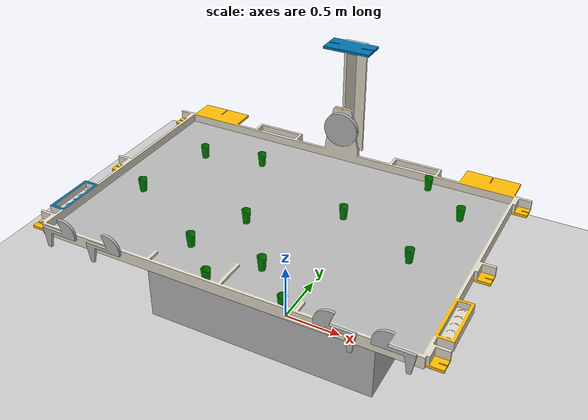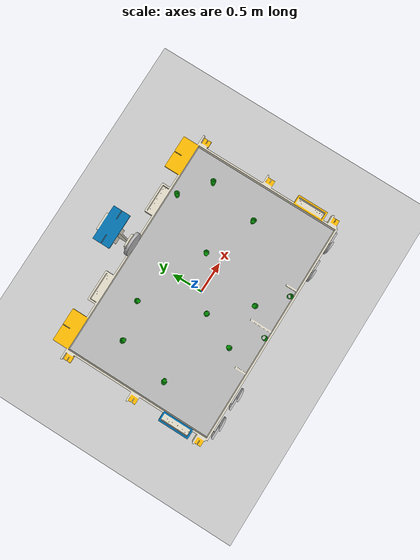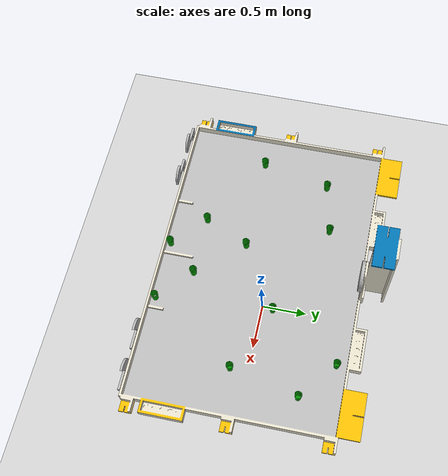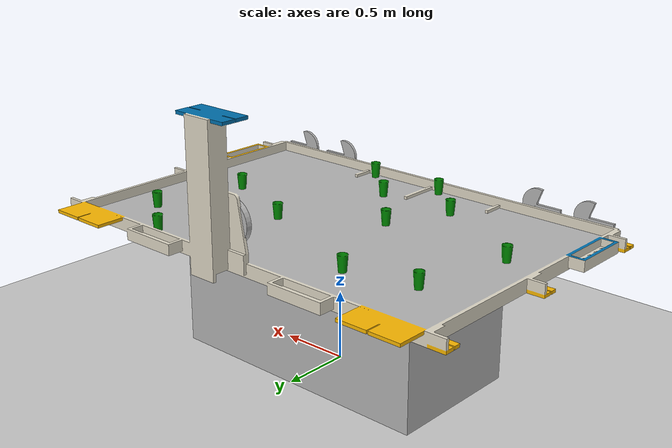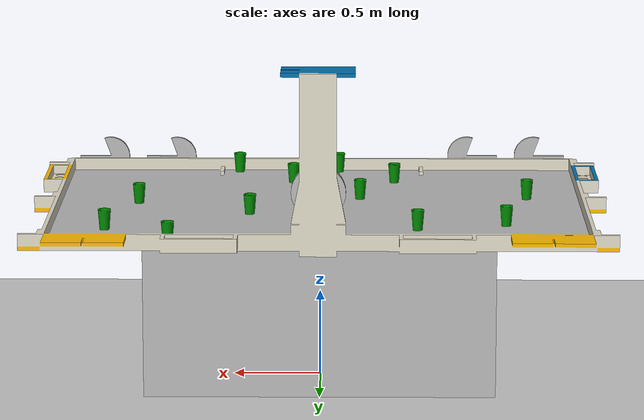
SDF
<sdf version="1.4">
 <world name="eurobot">
  <include><uri>model://ground_plane</uri></include>
  <include><uri>model://sun</uri></include>
  <include><uri>model://eurobot_arena_2020</uri></include>
  <include><pose>0 0.989 1.30 -1.57 1.57 3.14</pose><uri>model://weathercock</uri></include>
  <include><pose>-1.05 0.49 1 0 0 0</pose><uri>model://cup_green</uri><name>cup_6</name></include>
  <include><pose>-1.2 -0.2 1 0 0 0</pose><uri>model://cup_green</uri><name>cup_7</name></include>
  <include><pose>-0.55 0.6 1 0 0 0</pose><uri>model://cup_green</uri><name>cup_8</name></include>
  <include><pose>-0.23 -0.2 1 0 0 0</pose><uri>model://cup_green</uri><name>cup_9</name></include>
  <include><pose>-0.435 -0.65 1 0 0 0</pose><uri>model://cup_green</uri><name>cup_10</name></include>
  <include><pose>-0.105 -0.955 1 0 0 0</pose><uri>model://cup_green</uri><name>cup_11</name></include>
  <include><pose>0.165 -0.65 1 0 0 0</pose><uri>model://cup_green</uri><name>cup_13</name></include>
  <include><pose>0.4 0.2 1 0 0 0</pose><uri>model://cup_green</uri><name>cup_15</name></include>
  <include><pose>0.495 -0.955 1 0 0 0</pose><uri>model://cup_green</uri><name>cup_17</name></include>
  <include><pose>0.83 0.9 1 0 0 0</pose><uri>model://cup_green</uri><name>cup_19</name></include>
  <include><pose>1.05 -0.08 1 0 0 0</pose><uri>model://cup_green</uri><name>cup_21</name></include>
  <include><pose>1.2 0.6 1 0 0 0</pose><uri>model://cup_green</uri><name>cup_22</name></include>
 </world>
</sdf>

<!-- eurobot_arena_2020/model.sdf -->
<sdf version="1.4">
  <model name="eurobot_arena_2020">
    <pose>0 0 0 0 0 0</pose>
    <static>false</static>

    <link name="table">
      <inertial>
        <mass>30</mass>
        <inertia>
          <ixx>4.55</ixx>
          <ixy>0.0</ixy>
          <ixz>0.0</ixz>
          <iyy>4.55</iyy>
          <iyz>0.0</iyz>
          <izz>4.55</izz>
        </inertia>
      </inertial>

      <collision name="table_collision">
        <pose>0 0 0.989 0 0 0</pose>
        <geometry>
          <box>
            <size>3 2 0.022</size>
          </box>
        </geometry>
        <surface>
          <friction>
            <ode>
              <mu>100</mu>
              <mu2>50</mu2>
            </ode>
          </friction>
          <bounce/>
          <contact>
            <ode/>
          </contact>
        </surface>
      </collision>
      <visual name="table_visual">
        <pose>-1.5 1 0.978 1.57 0 0</pose>
        <geometry>
          <mesh>
            <uri>model://eurobot_arena_2020/meshes/eurobot_arena_2020.dae</uri>
            <scale>1 1 1 </scale>
          </mesh>
        </geometry>
      </visual>

      <collision name="table_left">
        <pose>0 -1.011 1.024 0 0 0</pose>
        <geometry>
          <box>
            <size>3 0.022 0.092</size>
          </box>
        </geometry>
      </collision>

      <collision name="table_right">
        <pose>0 1.011 1.024 0 0 0</pose>
        <geometry>
          <box>
            <size>3 0.022 0.092</size>
          </box>
        </geometry>
      </collision>

      <collision name="table_top">
        <pose>1.511 0 1.024 0 0 0</pose>
        <geometry>
          <box>
            <size>0.022 2 0.092</size>
          </box>
        </geometry>
      </collision>

      <collision name="table_bottom">
        <pose>-1.511 0 1.024 0 0 0</pose>
        <geometry>
          <box>
            <size>0.022 2 0.092</size>
          </box>
        </geometry>
      </collision>

      <collision name="table_stand_collision">
        <pose>0 0 0.489 0 0 0</pose>
        <geometry>
          <box>
            <size>2 1 0.978</size>
          </box>
        </geometry>
      </collision>

      <collision name="table_tower">
        <pose>0 1.10 1.5 0 0 0</pose>
        <geometry>
          <box>
            <size>0.40 0.20 1</size>
          </box>
        </geometry>
      </collision>

      <collision name="harbor_protection_middle">
        <pose>0 -0.850 1.011 0 0 0</pose>
        <geometry>
          <box>
            <size>0.022 0.3 0.022</size>
          </box>
        </geometry>
      </collision>

      <collision name="harbor_protection_left">
        <pose>-0.6 -0.925 1.011 0 0 0</pose>
        <geometry>
          <box>
            <size>0.022 0.150 0.022</size>
          </box>
        </geometry>
      </collision>

      <collision name="harbor_protection_right">
        <pose>0.6 -0.925 1.011 0 0 0</pose>
        <geometry>
          <box>
            <size>0.022 0.150 0.022</size>
          </box>
        </geometry>
      </collision>

      <visual name="table_stand_visual">
        <pose>0 0 0.489 0 0 0</pose>
        <geometry>
          <box>
            <size>2 1 0.978</size>
          </box>
        </geometry>
      </visual>
    </link>

    <include>
      <pose>-1.27 -1.044 1.067 1.57 0 0</pose>
      <name>windsock_blue_1</name>
      <uri>model://windsock</uri>
    </include>

    <joint name="windsock_hinge_blue_1" type="revolute">
      <child>windsock_blue_1::windsock_link</child>
      <parent>table</parent>
      <pose>0 0 0 0 0 0</pose>
      <axis>
        <xyz>0 1 0</xyz>
        <initial_position>0</initial_position>
        <dynamics>
          <friction>0.0001</friction>
        </dynamics>
        <limit>
          <lower>0</lower>
          <upper>1.93</upper>
        </limit>
      </axis>
    </joint>

    <include>
      <pose>-0.865 -1.044 1.067 1.57 0 0</pose>
      <name>windsock_blue_2</name>
      <uri>model://windsock</uri>
    </include>

    <joint name="windsock_hinge_blue_2" type="revolute">
      <child>windsock_blue_2::windsock_link</child>
      <parent>table</parent>
      <pose>0 0 0 0 0 0</pose>
      <axis>
        <initial_position>0</initial_position>
        <xyz>0 1 0</xyz>
        <dynamics>
          <friction>0.0001</friction>
        </dynamics>
        <limit>
          <lower>0</lower>
          <upper>1.93</upper>
        </limit>
      </axis>
    </joint>

    <include>
      <pose>1.27 -1.044 1.067 -1.57 3.14 0</pose>
      <name>windsock_yellow_1</name>
      <uri>model://windsock</uri>
    </include>

    <joint name="windsock_hinge_yellow_1" type="revolute">
      <child>windsock_yellow_1::windsock_link</child>
      <parent>table</parent>
      <pose>0 0 0 0 0 0</pose>
      <axis>
        <initial_position>0</initial_position>
        <xyz>0 1 0</xyz>
        <dynamics>
          <friction>0.0001</friction>
        </dynamics>
        <limit>
          <lower>-1.93</lower>
          <upper>0</upper>
        </limit>
      </axis>
    </joint>

    <include>
      <pose>0.865 -1.044 1.067 -1.57 3.14 0</pose>
      <name>windsock_yellow_2</name>
      <uri>model://windsock</uri>
    </include>

    <joint name="windsock_hinge_yellow_2" type="revolute">
      <child>windsock_yellow_2::windsock_link</child>
      <parent>table</parent>
      <pose>0 0 0 0 0 0</pose>
      <axis>
        <initial_position>0</initial_position>
        <xyz>0 1 0</xyz>
        <dynamics>
          <friction>0.0001</friction>
        </dynamics>
        <limit>
          <lower>-1.93</lower>
          <upper>0</upper>
        </limit>
      </axis>

    </joint>
  </model>
</sdf>

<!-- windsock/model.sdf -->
<sdf version="1.4">
  <model name="windsock">
    <static>false</static>
    <link name="windsock_link">
      <inertial>
        <pose>-0.0459 -0.01153 0.011</pose>
        <mass>0.350</mass>
        <inertia>
          <ixx>0.00142612</ixx>
          <ixy>0.00139666</ixy>
          <ixz>0</ixz>
          <iyy>0.00299930</iyy>
          <iyz>0</iyz>
          <izz>0.00439720</izz>
        </inertia>
      </inertial>

      <collision name="windsock_collision">
        <pose>-0.20 -0.15 0 0 0 0</pose>
        <geometry>
          <mesh>
            <uri>model://windsock/meshes/windsock.dae</uri>
            <scale>1 1 1 </scale>
          </mesh>
        </geometry>
      </collision>

      <visual name="windsock_visual">
        <pose>-0.20 -0.15 0 0 0 0</pose>
        <geometry>
          <mesh>
            <uri>model://windsock/meshes/windsock.dae</uri>
            <scale>1 1 1 </scale>
          </mesh>
        </geometry>
      </visual>
    </link>
  </model>
</sdf>

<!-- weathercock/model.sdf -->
<sdf version="1.4">
  <model name="weathercock">
    <pose>0 0 0 0 0 0</pose>
    <static>true</static>

    <link name="weathercock">
      <inertial>
        <mass>0.04</mass>
        <inertia>
          <ixx>0.00011928</ixx>
          <ixy>0.0</ixy>
          <ixz>0.0</ixz>
          <iyy>0.00011928</iyy>
          <iyz>0.0</iyz>
          <izz>0.00023856</izz>
        </inertia>
      </inertial>

      <collision name="weathercock_collision">
        <pose>0 0 0 0 0 0</pose>
        <geometry>
          <cylinder>
            <length>0.020</length>
            <radius>0.150</radius>
          </cylinder>
        </geometry>
      </collision>

      <visual name="weathercock_visual">
        <pose>0 0 0 0 0 0</pose>
        <geometry>
          <mesh>
            <uri>model://weathercock/meshes/weathercock.dae</uri>
            <scale>2 2 2 </scale>
          </mesh>
        </geometry>
      </visual>
    </link>
  </model>
</sdf>

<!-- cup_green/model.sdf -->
<sdf version="1.4">
  <model name="cup_green">
    <pose>0 0 0 0 0 0</pose>
    <static>false</static>

    <link name="cup">
      <inertial>
        <pose>0 0 0.0549 0 0 0</pose>
        <mass>0.0457</mass>
        <inertia>
          <ixx>0.00007880</ixx>
          <ixy>0.0</ixy>
          <ixz>0.0</ixz>
          <iyy>0.00007880</iyy>
          <iyz>0.0</iyz>
          <izz>0.00004316</izz>
        </inertia>
      </inertial>

      <collision name="cup_collision">
        <pose>0 0 0.0575 0 0 0</pose>
        <geometry>
          <cylinder>
            <length>0.115</length>
            <radius>0.036</radius>
          </cylinder>
        </geometry>
        <surface>
          <friction>
            <ode>
              <mu>0.5</mu>
              <mu2>0.5</mu2>
            </ode>
          </friction>
        </surface>
      </collision>

      <visual name="cup_visual">
        <pose>0 0 0.0575 0 0 0</pose>
        <geometry>
          <mesh>
            <uri>model://cup_green/meshes/cup_green.dae</uri>
            <scale>1 1 1 </scale>
          </mesh>
        </geometry>
      </visual>
    </link>
  </model>
</sdf>
